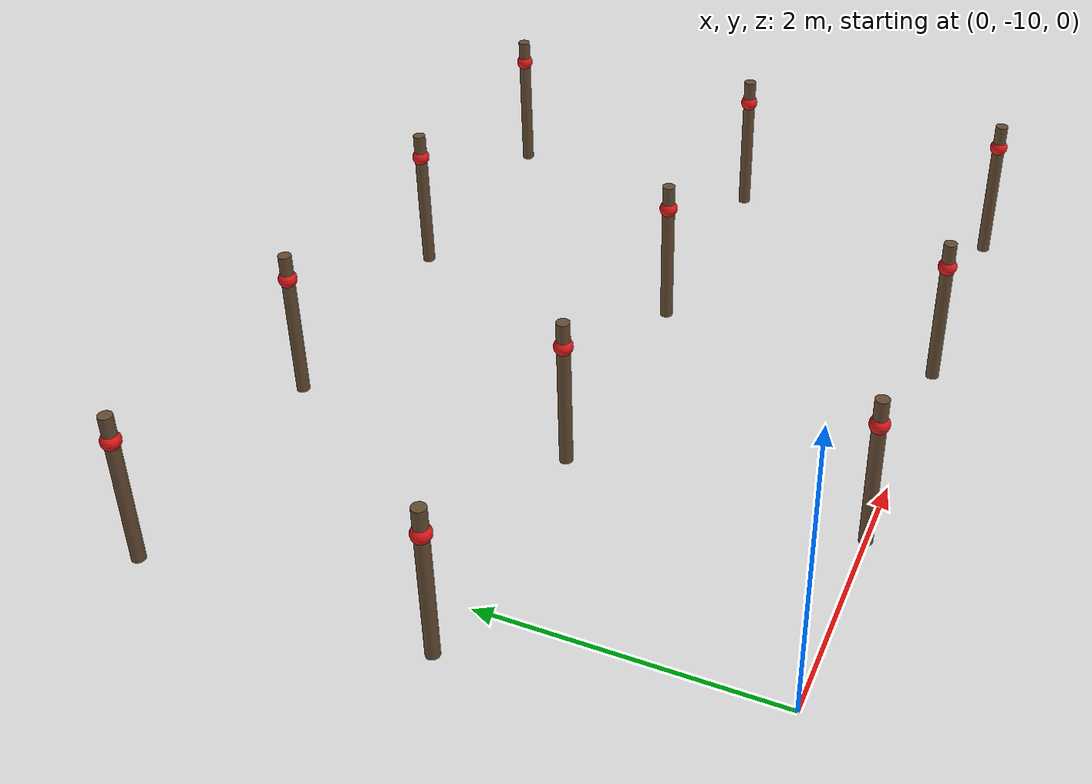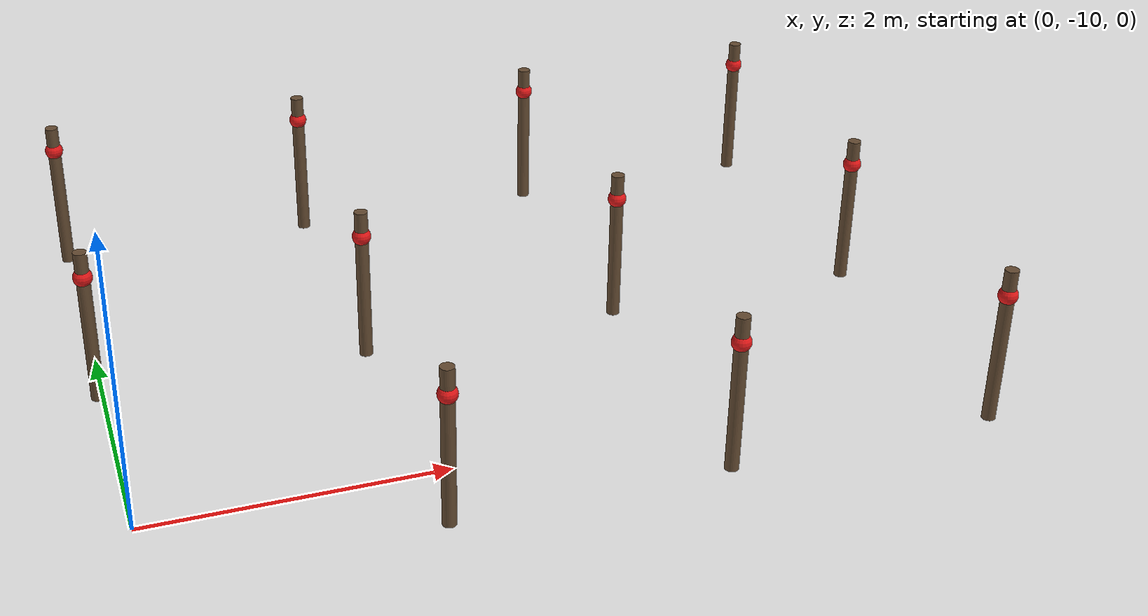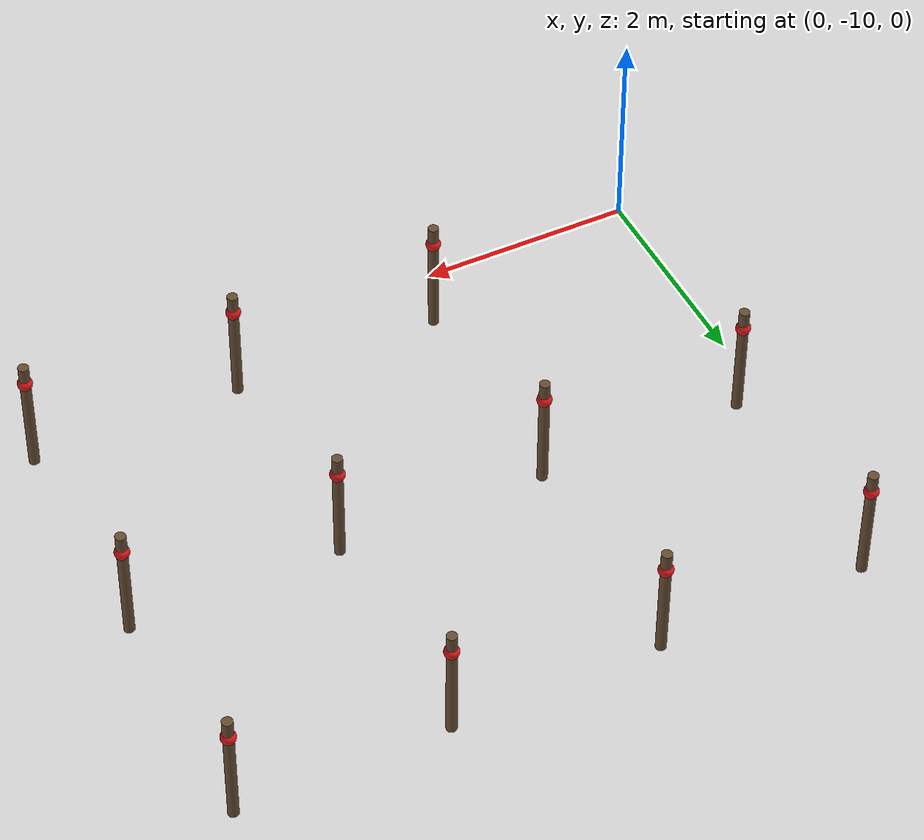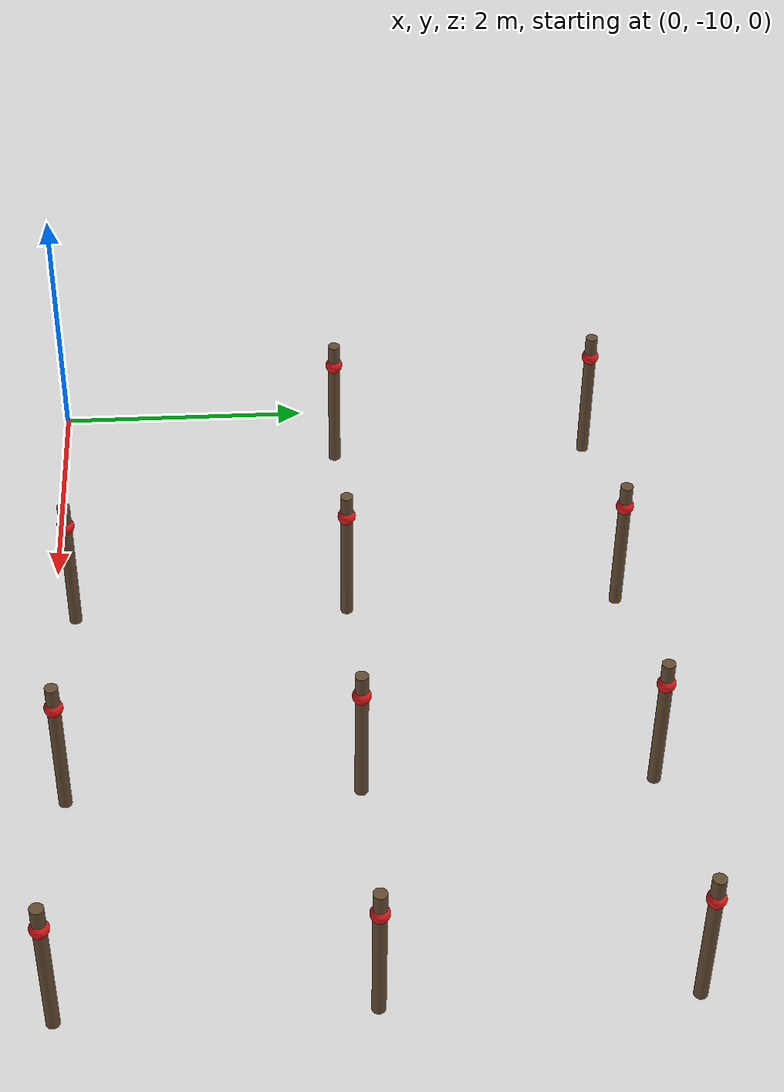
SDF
<sdf version="1.9">
 <world name="empty">
  <model name="row_minus4_post_00">
   <static>true</static>
   <pose>0 -5.5 -0.5 0 0 0</pose>
   <link name="vine_link">
    <collision name="post_collision">
     <geometry><cylinder><radius>0.05</radius><length>1.2</length></cylinder></geometry>
     <pose>0 0 0.6 0 0 0</pose>
    </collision>
    <visual name="post_visual">
     <geometry><cylinder><radius>0.05</radius><length>1.2</length></cylinder></geometry>
     <pose>0 0 0.6 0 0 0</pose>
     <material><diffuse>0.4 0.3 0.2 1</diffuse><ambient>0.4 0.3 0.2 1</ambient></material>
    </visual>
    <collision name="ball_collision">
     <geometry><sphere><radius>0.07</radius></sphere></geometry>
     <pose>0 0 1.0 0 0 0</pose>
    </collision>
    <visual name="ball_visual">
     <geometry><sphere><radius>0.07</radius></sphere></geometry>
     <pose>0 0 1.0 0 0 0</pose>
     <material><diffuse>0.9 0.1 0.1 1</diffuse><ambient>0.9 0.1 0.1 1</ambient></material>
    </visual>
   </link>
  </model>
  <model name="row_minus4_post_1">
   <static>true</static>
   <pose>2 -5.5 -0.5 0 0 0</pose>
   <link name="vine_link">
    <collision name="post_collision">
     <geometry><cylinder><radius>0.05</radius><length>1.2</length></cylinder></geometry>
     <pose>0 0 0.6 0 0 0</pose>
    </collision>
    <visual name="post_visual">
     <geometry><cylinder><radius>0.05</radius><length>1.2</length></cylinder></geometry>
     <pose>0 0 0.6 0 0 0</pose>
     <material><diffuse>0.4 0.3 0.2 1</diffuse><ambient>0.4 0.3 0.2 1</ambient></material>
    </visual>
    <collision name="ball_collision">
     <geometry><sphere><radius>0.07</radius></sphere></geometry>
     <pose>0 0 1.0 0 0 0</pose>
    </collision>
    <visual name="ball_visual">
     <geometry><sphere><radius>0.07</radius></sphere></geometry>
     <pose>0 0 1.0 0 0 0</pose>
     <material><diffuse>0.9 0.1 0.1 1</diffuse><ambient>0.9 0.1 0.1 1</ambient></material>
    </visual>
   </link>
  </model>
  <model name="row_minus4_post_2">
   <static>true</static>
   <pose>4 -5.5 -0.5 0 0 0</pose>
   <link name="vine_link">
    <collision name="post_collision">
     <geometry><cylinder><radius>0.05</radius><length>1.2</length></cylinder></geometry>
     <pose>0 0 0.6 0 0 0</pose>
    </collision>
    <visual name="post_visual">
     <geometry><cylinder><radius>0.05</radius><length>1.2</length></cylinder></geometry>
     <pose>0 0 0.6 0 0 0</pose>
     <material><diffuse>0.4 0.3 0.2 1</diffuse><ambient>0.4 0.3 0.2 1</ambient></material>
    </visual>
    <collision name="ball_collision">
     <geometry><sphere><radius>0.07</radius></sphere></geometry>
     <pose>0 0 1.0 0 0 0</pose>
    </collision>
    <visual name="ball_visual">
     <geometry><sphere><radius>0.07</radius></sphere></geometry>
     <pose>0 0 1.0 0 0 0</pose>
     <material><diffuse>0.9 0.1 0.1 1</diffuse><ambient>0.9 0.1 0.1 1</ambient></material>
    </visual>
   </link>
  </model>
  <model name="row_minus4_post_3">
   <static>true</static>
   <pose>6 -5.5 -0.5 0 0 0</pose>
   <link name="vine_link">
    <collision name="post_collision">
     <geometry><cylinder><radius>0.05</radius><length>1.2</length></cylinder></geometry>
     <pose>0 0 0.6 0 0 0</pose>
    </collision>
    <visual name="post_visual">
     <geometry><cylinder><radius>0.05</radius><length>1.2</length></cylinder></geometry>
     <pose>0 0 0.6 0 0 0</pose>
     <material><diffuse>0.4 0.3 0.2 1</diffuse><ambient>0.4 0.3 0.2 1</ambient></material>
    </visual>
    <collision name="ball_collision">
     <geometry><sphere><radius>0.07</radius></sphere></geometry>
     <pose>0 0 1.0 0 0 0</pose>
    </collision>
    <visual name="ball_visual">
     <geometry><sphere><radius>0.07</radius></sphere></geometry>
     <pose>0 0 1.0 0 0 0</pose>
     <material><diffuse>0.9 0.1 0.1 1</diffuse><ambient>0.9 0.1 0.1 1</ambient></material>
    </visual>
   </link>
  </model>
  <model name="row_minus5_post_00">
   <static>true</static>
   <pose>0 -7.7 -0.5 0 0 0</pose>
   <link name="vine_link">
    <collision name="post_collision">
     <geometry><cylinder><radius>0.05</radius><length>1.2</length></cylinder></geometry>
     <pose>0 0 0.6 0 0 0</pose>
    </collision>
    <visual name="post_visual">
     <geometry><cylinder><radius>0.05</radius><length>1.2</length></cylinder></geometry>
     <pose>0 0 0.6 0 0 0</pose>
     <material><diffuse>0.4 0.3 0.2 1</diffuse><ambient>0.4 0.3 0.2 1</ambient></material>
    </visual>
    <collision name="ball_collision">
     <geometry><sphere><radius>0.07</radius></sphere></geometry>
     <pose>0 0 1.0 0 0 0</pose>
    </collision>
    <visual name="ball_visual">
     <geometry><sphere><radius>0.07</radius></sphere></geometry>
     <pose>0 0 1.0 0 0 0</pose>
     <material><diffuse>0.9 0.1 0.1 1</diffuse><ambient>0.9 0.1 0.1 1</ambient></material>
    </visual>
   </link>
  </model>
  <model name="row_minus5_post_1">
   <static>true</static>
   <pose>2 -7.7 -0.5 0 0 0</pose>
   <link name="vine_link">
    <collision name="post_collision">
     <geometry><cylinder><radius>0.05</radius><length>1.2</length></cylinder></geometry>
     <pose>0 0 0.6 0 0 0</pose>
    </collision>
    <visual name="post_visual">
     <geometry><cylinder><radius>0.05</radius><length>1.2</length></cylinder></geometry>
     <pose>0 0 0.6 0 0 0</pose>
     <material><diffuse>0.4 0.3 0.2 1</diffuse><ambient>0.4 0.3 0.2 1</ambient></material>
    </visual>
    <collision name="ball_collision">
     <geometry><sphere><radius>0.07</radius></sphere></geometry>
     <pose>0 0 1.0 0 0 0</pose>
    </collision>
    <visual name="ball_visual">
     <geometry><sphere><radius>0.07</radius></sphere></geometry>
     <pose>0 0 1.0 0 0 0</pose>
     <material><diffuse>0.9 0.1 0.1 1</diffuse><ambient>0.9 0.1 0.1 1</ambient></material>
    </visual>
   </link>
  </model>
  <model name="row_minus5_post_2">
   <static>true</static>
   <pose>4 -7.7 -0.5 0 0 0</pose>
   <link name="vine_link">
    <collision name="post_collision">
     <geometry><cylinder><radius>0.05</radius><length>1.2</length></cylinder></geometry>
     <pose>0 0 0.6 0 0 0</pose>
    </collision>
    <visual name="post_visual">
     <geometry><cylinder><radius>0.05</radius><length>1.2</length></cylinder></geometry>
     <pose>0 0 0.6 0 0 0</pose>
     <material><diffuse>0.4 0.3 0.2 1</diffuse><ambient>0.4 0.3 0.2 1</ambient></material>
    </visual>
    <collision name="ball_collision">
     <geometry><sphere><radius>0.07</radius></sphere></geometry>
     <pose>0 0 1.0 0 0 0</pose>
    </collision>
    <visual name="ball_visual">
     <geometry><sphere><radius>0.07</radius></sphere></geometry>
     <pose>0 0 1.0 0 0 0</pose>
     <material><diffuse>0.9 0.1 0.1 1</diffuse><ambient>0.9 0.1 0.1 1</ambient></material>
    </visual>
   </link>
  </model>
  <model name="row_minus5_post_3">
   <static>true</static>
   <pose>6 -7.7 -0.5 0 0 0</pose>
   <link name="vine_link">
    <collision name="post_collision">
     <geometry><cylinder><radius>0.05</radius><length>1.2</length></cylinder></geometry>
     <pose>0 0 0.6 0 0 0</pose>
    </collision>
    <visual name="post_visual">
     <geometry><cylinder><radius>0.05</radius><length>1.2</length></cylinder></geometry>
     <pose>0 0 0.6 0 0 0</pose>
     <material><diffuse>0.4 0.3 0.2 1</diffuse><ambient>0.4 0.3 0.2 1</ambient></material>
    </visual>
    <collision name="ball_collision">
     <geometry><sphere><radius>0.07</radius></sphere></geometry>
     <pose>0 0 1.0 0 0 0</pose>
    </collision>
    <visual name="ball_visual">
     <geometry><sphere><radius>0.07</radius></sphere></geometry>
     <pose>0 0 1.0 0 0 0</pose>
     <material><diffuse>0.9 0.1 0.1 1</diffuse><ambient>0.9 0.1 0.1 1</ambient></material>
    </visual>
   </link>
  </model>
  <model name="row_minus6_post_1">
   <static>true</static>
   <pose>2 -9.9 -0.5 0 0 0</pose>
   <link name="vine_link">
    <collision name="post_collision">
     <geometry><cylinder><radius>0.05</radius><length>1.2</length></cylinder></geometry>
     <pose>0 0 0.6 0 0 0</pose>
    </collision>
    <visual name="post_visual">
     <geometry><cylinder><radius>0.05</radius><length>1.2</length></cylinder></geometry>
     <pose>0 0 0.6 0 0 0</pose>
     <material><diffuse>0.4 0.3 0.2 1</diffuse><ambient>0.4 0.3 0.2 1</ambient></material>
    </visual>
    <collision name="ball_collision">
     <geometry><sphere><radius>0.07</radius></sphere></geometry>
     <pose>0 0 1.0 0 0 0</pose>
    </collision>
    <visual name="ball_visual">
     <geometry><sphere><radius>0.07</radius></sphere></geometry>
     <pose>0 0 1.0 0 0 0</pose>
     <material><diffuse>0.9 0.1 0.1 1</diffuse><ambient>0.9 0.1 0.1 1</ambient></material>
    </visual>
   </link>
  </model>
  <model name="row_minus6_post_2">
   <static>true</static>
   <pose>4 -9.9 -0.5 0 0 0</pose>
   <link name="vine_link">
    <collision name="post_collision">
     <geometry><cylinder><radius>0.05</radius><length>1.2</length></cylinder></geometry>
     <pose>0 0 0.6 0 0 0</pose>
    </collision>
    <visual name="post_visual">
     <geometry><cylinder><radius>0.05</radius><length>1.2</length></cylinder></geometry>
     <pose>0 0 0.6 0 0 0</pose>
     <material><diffuse>0.4 0.3 0.2 1</diffuse><ambient>0.4 0.3 0.2 1</ambient></material>
    </visual>
    <collision name="ball_collision">
     <geometry><sphere><radius>0.07</radius></sphere></geometry>
     <pose>0 0 1.0 0 0 0</pose>
    </collision>
    <visual name="ball_visual">
     <geometry><sphere><radius>0.07</radius></sphere></geometry>
     <pose>0 0 1.0 0 0 0</pose>
     <material><diffuse>0.9 0.1 0.1 1</diffuse><ambient>0.9 0.1 0.1 1</ambient></material>
    </visual>
   </link>
  </model>
  <model name="row_minus6_post_3">
   <static>true</static>
   <pose>6 -9.9 -0.5 0 0 0</pose>
   <link name="vine_link">
    <collision name="post_collision">
     <geometry><cylinder><radius>0.05</radius><length>1.2</length></cylinder></geometry>
     <pose>0 0 0.6 0 0 0</pose>
    </collision>
    <visual name="post_visual">
     <geometry><cylinder><radius>0.05</radius><length>1.2</length></cylinder></geometry>
     <pose>0 0 0.6 0 0 0</pose>
     <material><diffuse>0.4 0.3 0.2 1</diffuse><ambient>0.4 0.3 0.2 1</ambient></material>
    </visual>
    <collision name="ball_collision">
     <geometry><sphere><radius>0.07</radius></sphere></geometry>
     <pose>0 0 1.0 0 0 0</pose>
    </collision>
    <visual name="ball_visual">
     <geometry><sphere><radius>0.07</radius></sphere></geometry>
     <pose>0 0 1.0 0 0 0</pose>
     <material><diffuse>0.9 0.1 0.1 1</diffuse><ambient>0.9 0.1 0.1 1</ambient></material>
    </visual>
   </link>
  </model>
 </world>
</sdf>
